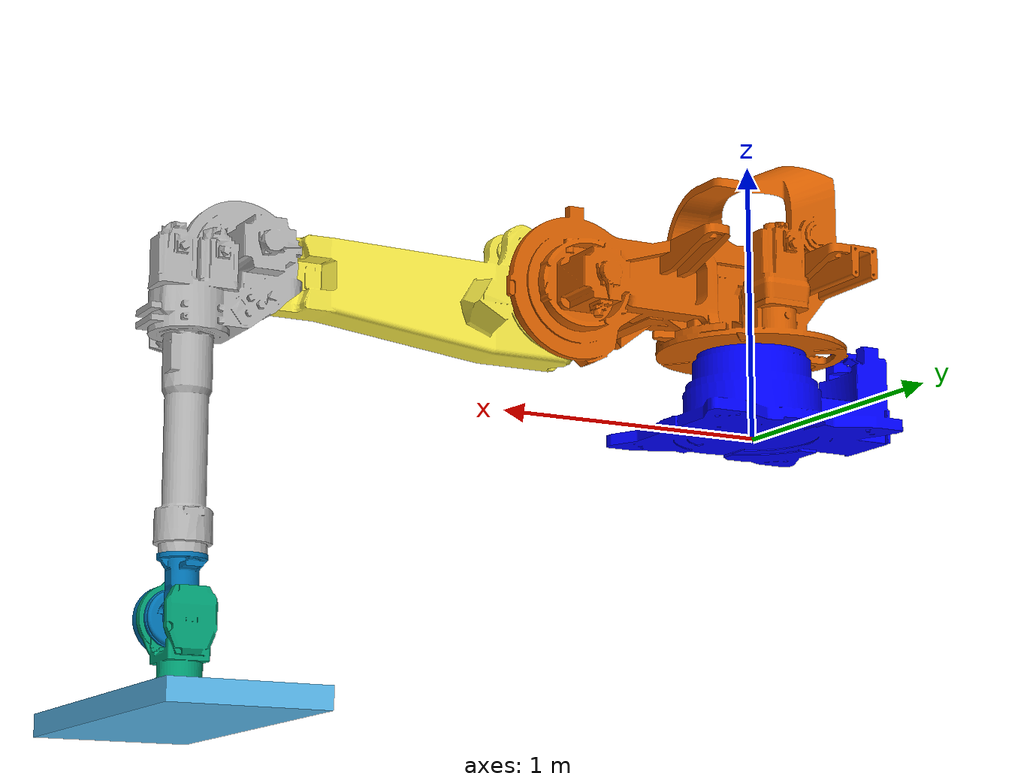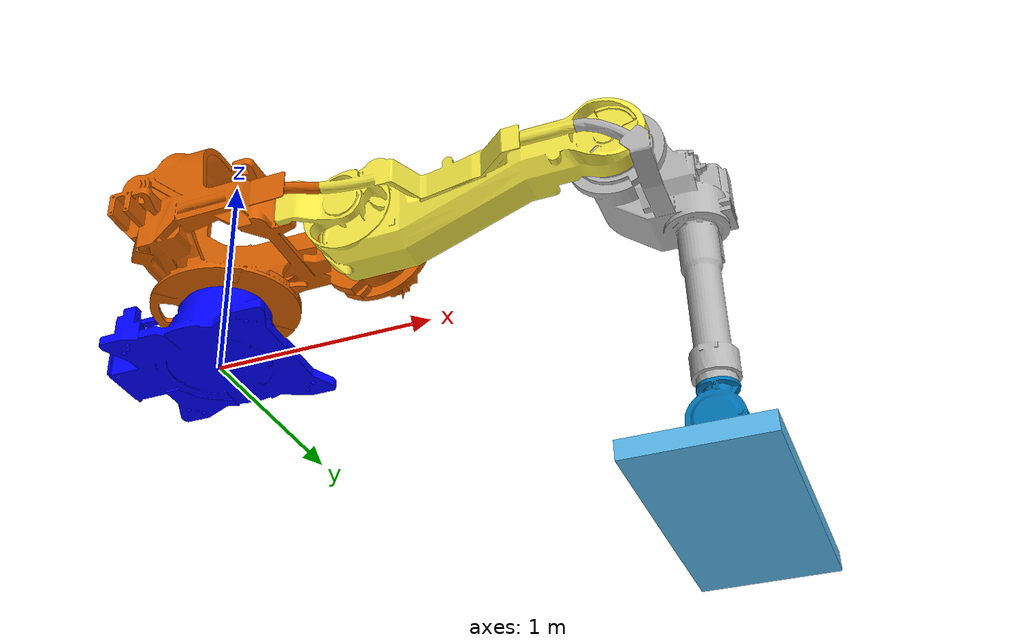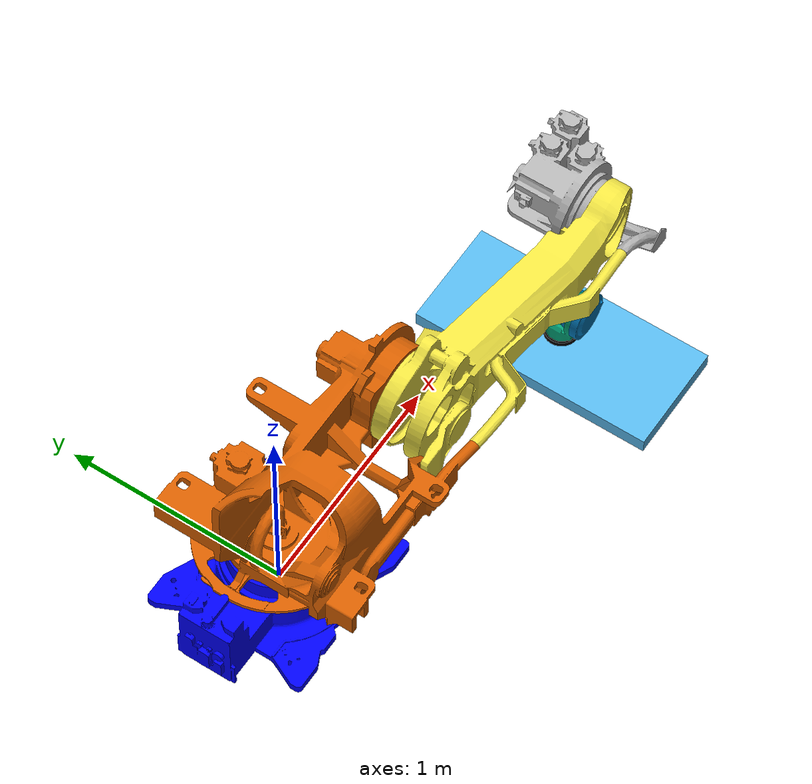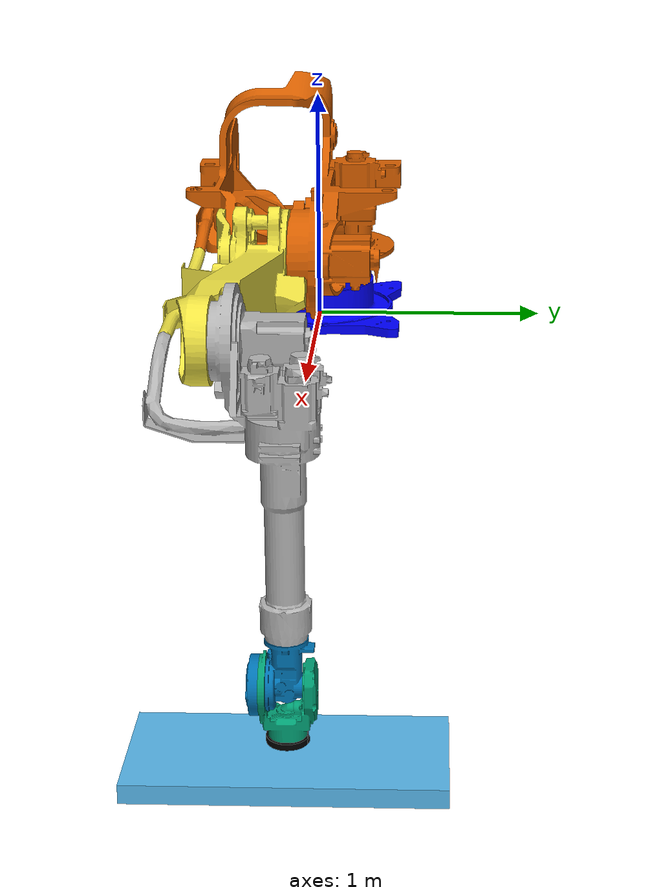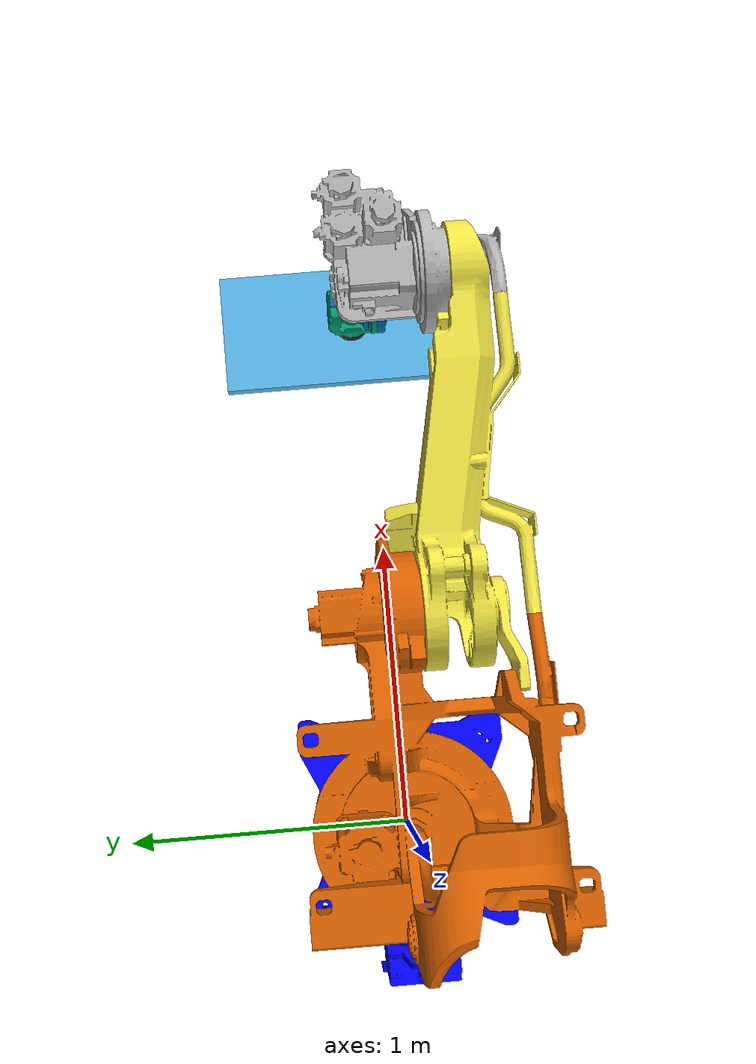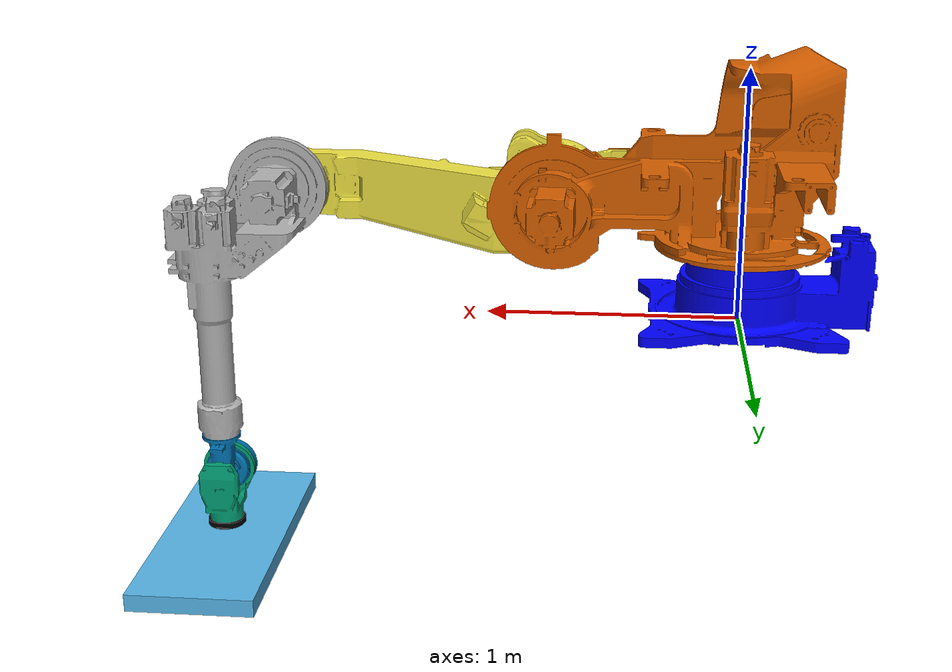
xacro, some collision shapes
<?xml version="1.0" ?>
<!-- Defines references and sets up the main xacro and ros2 controllers -->
<robot name="es165d" xmlns:xacro="http://ros.org/wiki/xacro">
  <!-- Plain URDF (LinkForge export); xacro merges its contents under this robot name -->
  <xacro:include filename="$(find es165_moveit)/urdf/arm_w_mm.urdf"/>

  <!-- ros2 control setup -->
  <xacro:include filename="$(find es165_moveit)/urdf/es_165.ros2_control.xacro" />
  <xacro:es165_ros2_control name="es165_arm"/>
</robot>

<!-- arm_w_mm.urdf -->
<!--
  Robot: es165_macro
  Generated by: LinkForge v1.4.0
  https://github.com/arounamounchili/linkforge
  Date: 2026-06-11 11:47:16
-->
<robot name="es165_macro">
  <!-- Materials -->
  <material name="black">
    <color rgba="0 0 0 1" />
  </material>
  <material name="blue">
    <color rgba="0 0 1 1" />
  </material>
  <!-- Links -->
  <link name="base_link">
    <inertial>
      <mass value="1" />
      <inertia ixx="0.037775" ixy="-0.000017" ixz="0.00465" iyy="0.063748" iyz="-0.000015" izz="0.084785" />
    </inertial>
    <visual>
      <origin xyz="-0.067576 0 0.1825" rpy="0 0 0" />
      <geometry>
        <mesh filename="package://es165_moveit/urdf/meshes/base_link_visual.stl" />
      </geometry>
      <material name="blue" />
    </visual>
    <collision>
      <origin xyz="-0.067972 0 0.1825" rpy="0 0 0" />
      <geometry>
        <mesh filename="package://es165_moveit/urdf/meshes/base_link_collision.stl" />
      </geometry>
    </collision>
  </link>
  <link name="ee_base_link">
    <inertial>
      <mass value="1" />
      <inertia ixx="0.020265" ixy="0" ixz="-0.000002" iyy="0.098548" iyz="0" izz="0.079038" />
    </inertial>
    <visual>
      <origin xyz="0.000514 -0.000924 0.000226" rpy="0 0 0" />
      <geometry>
        <mesh filename="package://es165_moveit/urdf/meshes/ee_base_link_visual.stl" />
      </geometry>
    </visual>
    <collision>
      <origin xyz="0.000514 -0.000923 0.000226" rpy="0 0 0" />
      <geometry>
        <box size="1.178 0.0747 0.528" />
      </geometry>
    </collision>
  </link>
  <link name="link_b">
    <inertial>
      <mass value="1" />
      <inertia ixx="0.009574" ixy="0" ixz="0" iyy="0.008842" iyz="0.00026" izz="0.005764" />
    </inertial>
    <visual>
      <origin xyz="0 0.0065 -0.03325" rpy="0 0 0" />
      <geometry>
        <mesh filename="package://es165_moveit/urdf/meshes/link_b_visual.stl" />
      </geometry>
    </visual>
    <collision>
      <origin xyz="0 0.0065 -0.03325" rpy="0 0 0" />
      <geometry>
        <mesh filename="package://es165_moveit/urdf/meshes/link_b_collision.stl" />
      </geometry>
    </collision>
  </link>
  <link name="link_l">
    <inertial>
      <mass value="1" />
      <inertia ixx="0.023135" ixy="0.009622" ixz="0.00092" iyy="0.156063" iyz="0.000646" izz="0.156769" />
    </inertial>
    <visual>
      <origin xyz="0.51099 -0.239932 0.005065" rpy="0 0 0" />
      <geometry>
        <mesh filename="package://es165_moveit/urdf/meshes/link_l_visual.stl" />
      </geometry>
    </visual>
    <collision>
      <origin xyz="0.511 -0.239932 0.005106" rpy="0 0 0" />
      <geometry>
        <mesh filename="package://es165_moveit/urdf/meshes/link_l_collision.stl" />
      </geometry>
    </collision>
  </link>
  <link name="link_r">
    <inertial>
      <mass value="1" />
      <inertia ixx="0.009081" ixy="0.000007" ixz="-0.000002" iyy="0.007906" iyz="-0.001654" izz="0.005797" />
    </inertial>
    <visual>
      <origin xyz="0 -0.021012 -1.1845" rpy="0 0 0" />
      <geometry>
        <mesh filename="package://es165_moveit/urdf/meshes/link_r_visual.stl" />
      </geometry>
    </visual>
    <collision>
      <origin xyz="0 -0.021009 -1.1845" rpy="0 0 0" />
      <geometry>
        <mesh filename="package://es165_moveit/urdf/meshes/link_r_collision.stl" />
      </geometry>
    </collision>
  </link>
  <link name="link_s">
    <inertial>
      <mass value="1" />
      <inertia ixx="0.079653" ixy="-0.007092" ixz="0.017974" iyy="0.137648" iyz="0.005438" izz="0.153523" />
    </inertial>
    <visual>
      <origin xyz="0.324 -0.095 0.183576" rpy="0 0 0" />
      <geometry>
        <mesh filename="package://es165_moveit/urdf/meshes/link_s_visual.stl" />
      </geometry>
    </visual>
    <collision>
      <origin xyz="0.324 -0.095 0.183577" rpy="0 0 0" />
      <geometry>
        <mesh filename="package://es165_moveit/urdf/meshes/link_s_collision.stl" />
      </geometry>
    </collision>
  </link>
  <link name="link_t">
    <inertial>
      <mass value="1" />
      <inertia ixx="0.001623" ixy="0" ixz="0" iyy="0.00166" iyz="0.000003" izz="0.003176" />
    </inertial>
    <visual>
      <origin xyz="0 0 0.01275" rpy="0 0 0" />
      <geometry>
        <mesh filename="package://es165_moveit/urdf/meshes/link_t_visual.stl" />
      </geometry>
      <material name="black" />
    </visual>
    <collision>
      <origin xyz="0 0 0.01275" rpy="0 0 0" />
      <geometry>
        <mesh filename="package://es165_moveit/urdf/meshes/link_t_collision.stl" />
      </geometry>
    </collision>
  </link>
  <link name="link_u">
    <inertial>
      <mass value="1" />
      <inertia ixx="0.093567" ixy="-0.005301" ixz="0.014698" iyy="0.089766" iyz="0.008728" izz="0.038073" />
    </inertial>
    <visual>
      <origin xyz="0.099 -0.160987 -0.414" rpy="0 0 0" />
      <geometry>
        <mesh filename="package://es165_moveit/urdf/meshes/link_u_visual.stl" />
      </geometry>
    </visual>
    <collision>
      <origin xyz="0.099 -0.160988 -0.414" rpy="0 0 0" />
      <geometry>
        <mesh filename="package://es165_moveit/urdf/meshes/link_u_collision.stl" />
      </geometry>
    </collision>
  </link>
  <link name="tool0">
    <inertial>
      <mass value="1" />
      <inertia ixx="1" ixy="0" ixz="0" iyy="1" iyz="0" izz="1" />
    </inertial>
  </link>
  <!-- No inertial on the root link: KDL does not support root-link inertia -->
  <link name="world" />
  <!-- Joints -->
  <joint name="ee_base_link_joint" type="fixed">
    <origin xyz="0.004513 0 -0.0745" rpy="1.570796 0 1.570796" />
    <parent link="link_t" />
    <child link="ee_base_link" />
  </joint>
  <joint name="joint_1_s" type="revolute">
    <origin xyz="0 0 0.45" rpy="0 0 0" />
    <parent link="base_link" />
    <child link="link_s" />
    <axis xyz="0 0 1" />
    <limit effort="0" velocity="1.570796" lower="-3.141593" upper="3.141593" />
  </joint>
  <joint name="joint_2_l" type="revolute">
    <origin xyz="0.74 0 0" rpy="0 0 0" />
    <parent link="link_s" />
    <child link="link_l" />
    <axis xyz="0 1 0" />
    <limit effort="0" velocity="1.48353" lower="-2.268928" upper="1.396263" />
  </joint>
  <joint name="joint_3_u" type="revolute">
    <origin xyz="1.15 0 0" rpy="0 0 0" />
    <parent link="link_l" />
    <child link="link_u" />
    <axis xyz="0 -1 0" />
    <limit effort="0" velocity="1.48353" lower="-1.954769" upper="3.630285" />
  </joint>
  <joint name="joint_4_r" type="revolute">
    <origin xyz="0.25 0 0" rpy="0 0 0" />
    <parent link="link_u" />
    <child link="link_r" />
    <axis xyz="0 0 1" />
    <limit effort="0" velocity="3.054326" lower="-6.283185" upper="6.283185" />
  </joint>
  <joint name="joint_5_b" type="revolute">
    <origin xyz="0 0 -1.225" rpy="0 0 0" />
    <parent link="link_r" />
    <child link="link_b" />
    <axis xyz="0 -1 0" />
    <limit effort="0" velocity="2.617994" lower="-2.268928" upper="2.268928" />
  </joint>
  <joint name="joint_6_t" type="revolute">
    <origin xyz="0 0 -0.225" rpy="0 0 0" />
    <parent link="link_b" />
    <child link="link_t" />
    <axis xyz="0 0 1" />
    <limit effort="0" velocity="4.18879" lower="-6.283185" upper="6.283185" />
  </joint>
  <joint name="joint_t_tool0" type="fixed">
    <origin xyz="0 0 0" rpy="0 3.141592 0" />
    <parent link="link_t" />
    <child link="tool0" />
  </joint>
  <joint name="world_fixed_joint" type="fixed">
    <parent link="world" />
    <child link="base_link" />
  </joint>
</robot>
